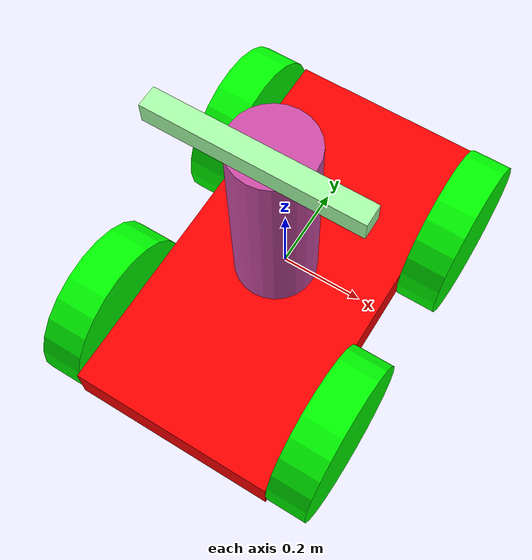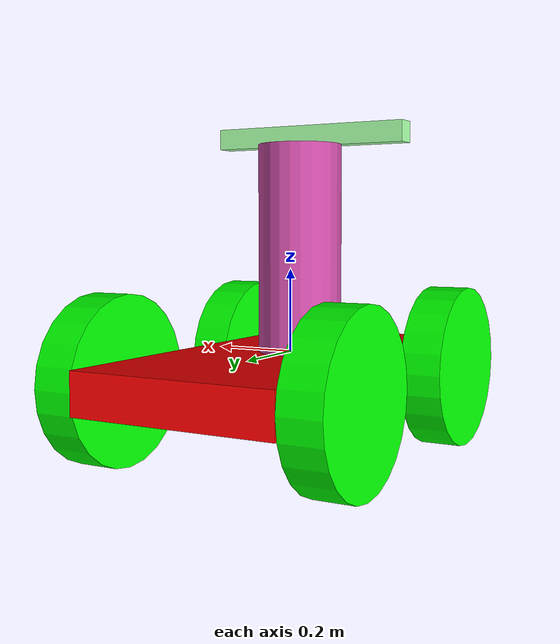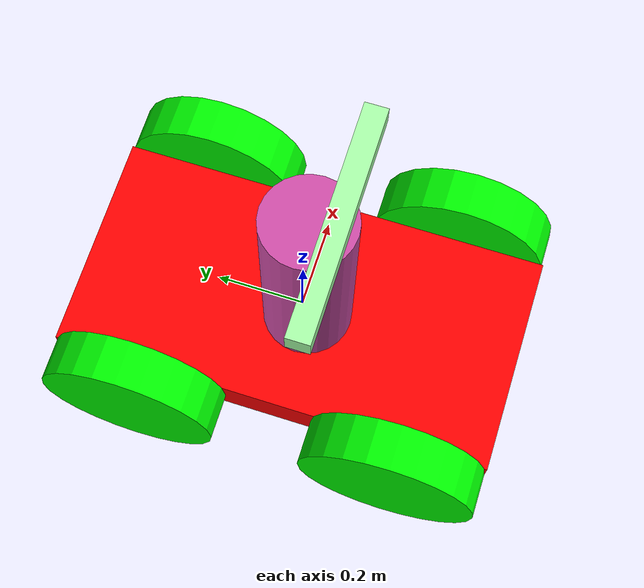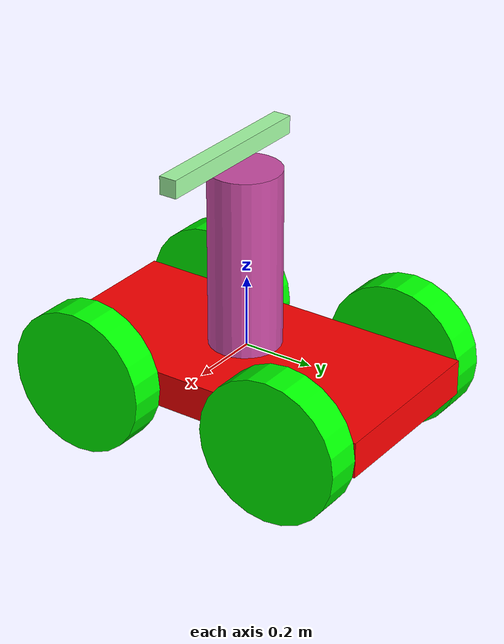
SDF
<?xml version='1.0'?>
<sdf version='1.6'>
  <model name='Robot'>
    <link name='link_0'>
      <pose frame=''>0.003333 0.003332 -0.05 0 -0 0</pose>
      <inertial>
        <mass>1</mass>
        <inertia>
          <ixx>0.166667</ixx>
          <ixy>0</ixy>
          <ixz>0</ixz>
          <iyy>0.166667</iyy>
          <iyz>0</iyz>
          <izz>0.166667</izz>
        </inertia>
        <pose frame=''>0 0 0 0 -0 0</pose>
      </inertial>
      <self_collide>0</self_collide>
      <kinematic>0</kinematic>
      <visual name='visual'>
        <pose frame=''>0 0 0 0 -0 0</pose>
        <geometry>
          <box>
            <size>0.5 1 0.1</size>
          </box>
        </geometry>
        <material>
          <lighting>1</lighting>
          <script>
            <uri>file://media/materials/scripts/gazebo.material</uri>
            <name>Gazebo/Grey</name>
          </script>
          <ambient>1 0 0 1</ambient>
          <diffuse>0.7 0.7 0.7 1</diffuse>
          <specular>0.01 0.01 0.01 1</specular>
          <emissive>0 0 0 1</emissive>
          <shader type='vertex'>
            <normal_map>__default__</normal_map>
          </shader>
        </material>
        <transparency>0</transparency>
        <cast_shadows>1</cast_shadows>
      </visual>
      <collision name='collision'>
        <laser_retro>0</laser_retro>
        <max_contacts>10</max_contacts>
        <pose frame=''>0 0 0 0 -0 0</pose>
        <geometry>
          <box>
            <size>0.5 1 0.1</size>
          </box>
        </geometry>
        <surface>
          <friction>
            <ode>
              <mu>1</mu>
              <mu2>1</mu2>
              <fdir1>0 0 0</fdir1>
              <slip1>0</slip1>
              <slip2>0</slip2>
            </ode>
            <torsional>
              <coefficient>1</coefficient>
              <patch_radius>0</patch_radius>
              <surface_radius>0</surface_radius>
              <use_patch_radius>1</use_patch_radius>
              <ode>
                <slip>0</slip>
              </ode>
            </torsional>
          </friction>
          <bounce>
            <restitution_coefficient>0</restitution_coefficient>
            <threshold>1e+06</threshold>
          </bounce>
          <contact>
            <collide_without_contact>0</collide_without_contact>
            <collide_without_contact_bitmask>1</collide_without_contact_bitmask>
            <collide_bitmask>1</collide_bitmask>
            <ode>
              <soft_cfm>0</soft_cfm>
              <soft_erp>0.2</soft_erp>
              <kp>1e+13</kp>
              <kd>1</kd>
              <max_vel>0.01</max_vel>
              <min_depth>0</min_depth>
            </ode>
            <bullet>
              <split_impulse>1</split_impulse>
              <split_impulse_penetration_threshold>-0.01</split_impulse_penetration_threshold>
              <soft_cfm>0</soft_cfm>
              <soft_erp>0.2</soft_erp>
              <kp>1e+13</kp>
              <kd>1</kd>
            </bullet>
          </contact>
        </surface>
      </collision>
    </link>
    <link name='link_0_0'>
      <pose frame=''>-0.016672 -0.074132 0.524995 0 -0 0.000523</pose>
      <inertial>
        <mass>1</mass>
        <inertia>
          <ixx>0.166667</ixx>
          <ixy>0</ixy>
          <ixz>0</ixz>
          <iyy>0.166667</iyy>
          <iyz>0</iyz>
          <izz>0.166667</izz>
        </inertia>
        <pose frame=''>0 0 0 0 -0 0</pose>
      </inertial>
      <gravity>1</gravity>
      <self_collide>0</self_collide>
      <kinematic>0</kinematic>
      <visual name='visual'>
        <pose frame=''>0 0 0 0 -0 0</pose>
        <geometry>
          <box>
            <size>0.5 0.05 0.05</size>
          </box>
        </geometry>
        <material>
          <lighting>1</lighting>
          <script>
            <uri>file://media/materials/scripts/gazebo.material</uri>
            <name>Gazebo/Grey</name>
          </script>
          <ambient>0.65 1 0.65 1</ambient>
          <diffuse>0.7 0.7 0.7 1</diffuse>
          <specular>0.01 0.01 0.01 1</specular>
          <emissive>0 0 0 1</emissive>
          <shader type='vertex'>
            <normal_map>__default__</normal_map>
          </shader>
        </material>
        <transparency>0</transparency>
        <cast_shadows>1</cast_shadows>
      </visual>
      <collision name='collision'>
        <laser_retro>0</laser_retro>
        <max_contacts>10</max_contacts>
        <pose frame=''>0 0 0 0 -0 0</pose>
        <geometry>
          <box>
            <size>0.5 0.05 0.05</size>
          </box>
        </geometry>
        <surface>
          <friction>
            <ode>
              <mu>1</mu>
              <mu2>1</mu2>
              <fdir1>0 0 0</fdir1>
              <slip1>0</slip1>
              <slip2>0</slip2>
            </ode>
            <torsional>
              <coefficient>1</coefficient>
              <patch_radius>0</patch_radius>
              <surface_radius>0</surface_radius>
              <use_patch_radius>1</use_patch_radius>
              <ode>
                <slip>0</slip>
              </ode>
            </torsional>
          </friction>
          <bounce>
            <restitution_coefficient>0</restitution_coefficient>
            <threshold>1e+06</threshold>
          </bounce>
          <contact>
            <collide_without_contact>0</collide_without_contact>
            <collide_without_contact_bitmask>1</collide_without_contact_bitmask>
            <collide_bitmask>1</collide_bitmask>
            <ode>
              <soft_cfm>0</soft_cfm>
              <soft_erp>0.2</soft_erp>
              <kp>1e+13</kp>
              <kd>1</kd>
              <max_vel>0.01</max_vel>
              <min_depth>0</min_depth>
            </ode>
            <bullet>
              <split_impulse>1</split_impulse>
              <split_impulse_penetration_threshold>-0.01</split_impulse_penetration_threshold>
              <soft_cfm>0</soft_cfm>
              <soft_erp>0.2</soft_erp>
              <kp>1e+13</kp>
              <kd>1</kd>
            </bullet>
          </contact>
        </surface>
      </collision>
    </link>
    <link name='link_2'>
      <pose frame=''>0.303373 0.303332 -0.05 1.5707 0 1.5707</pose>
      <inertial>
        <mass>1</mass>
        <inertia>
          <ixx>0.145833</ixx>
          <ixy>0</ixy>
          <ixz>0</ixz>
          <iyy>0.145833</iyy>
          <iyz>0</iyz>
          <izz>0.125</izz>
        </inertia>
        <pose frame=''>0 0 0 0 -0 0</pose>
      </inertial>
      <self_collide>0</self_collide>
      <kinematic>0</kinematic>
      <visual name='visual'>
        <pose frame=''>0 0 0 0 -0 0</pose>
        <geometry>
          <cylinder>
            <radius>0.2</radius>
            <length>0.1</length>
          </cylinder>
        </geometry>
        <material>
          <lighting>1</lighting>
          <script>
            <uri>file://media/materials/scripts/gazebo.material</uri>
            <name>Gazebo/Grey</name>
          </script>
          <ambient>0 1 0 1</ambient>
          <diffuse>0.7 0.7 0.7 1</diffuse>
          <specular>0.01 0.01 0.01 1</specular>
          <emissive>0 0 0 1</emissive>
          <shader type='vertex'>
            <normal_map>__default__</normal_map>
          </shader>
        </material>
        <transparency>0</transparency>
        <cast_shadows>1</cast_shadows>
      </visual>
      <collision name='collision'>
        <laser_retro>0</laser_retro>
        <max_contacts>10</max_contacts>
        <pose frame=''>0 0 0 0 -0 0</pose>
        <geometry>
          <cylinder>
            <radius>0.2</radius>
            <length>0.1</length>
          </cylinder>
        </geometry>
        <surface>
          <friction>
            <ode>
              <mu>1</mu>
              <mu2>1</mu2>
              <fdir1>0 0 0</fdir1>
              <slip1>0</slip1>
              <slip2>0</slip2>
            </ode>
            <torsional>
              <coefficient>1</coefficient>
              <patch_radius>0</patch_radius>
              <surface_radius>0</surface_radius>
              <use_patch_radius>1</use_patch_radius>
              <ode>
                <slip>0</slip>
              </ode>
            </torsional>
          </friction>
          <bounce>
            <restitution_coefficient>0</restitution_coefficient>
            <threshold>1e+06</threshold>
          </bounce>
          <contact>
            <collide_without_contact>0</collide_without_contact>
            <collide_without_contact_bitmask>1</collide_without_contact_bitmask>
            <collide_bitmask>1</collide_bitmask>
            <ode>
              <soft_cfm>0</soft_cfm>
              <soft_erp>0.2</soft_erp>
              <kp>1e+13</kp>
              <kd>1</kd>
              <max_vel>0.01</max_vel>
              <min_depth>0</min_depth>
            </ode>
            <bullet>
              <split_impulse>1</split_impulse>
              <split_impulse_penetration_threshold>-0.01</split_impulse_penetration_threshold>
              <soft_cfm>0</soft_cfm>
              <soft_erp>0.2</soft_erp>
              <kp>1e+13</kp>
              <kd>1</kd>
            </bullet>
          </contact>
        </surface>
      </collision>
    </link>
    <link name='link_2_clone'>
      <pose frame=''>-0.296706 -0.296663 -0.05 1.5707 0 1.5707</pose>
      <inertial>
        <mass>1</mass>
        <inertia>
          <ixx>0.145833</ixx>
          <ixy>0</ixy>
          <ixz>0</ixz>
          <iyy>0.145833</iyy>
          <iyz>0</iyz>
          <izz>0.125</izz>
        </inertia>
        <pose frame=''>0 0 0 0 -0 0</pose>
      </inertial>
      <self_collide>0</self_collide>
      <kinematic>0</kinematic>
      <visual name='visual'>
        <pose frame=''>0 0 0 0 -0 0</pose>
        <geometry>
          <cylinder>
            <radius>0.2</radius>
            <length>0.1</length>
          </cylinder>
        </geometry>
        <material>
          <lighting>1</lighting>
          <script>
            <uri>file://media/materials/scripts/gazebo.material</uri>
            <name>Gazebo/Grey</name>
          </script>
          <ambient>0 1 0 1</ambient>
          <diffuse>0.7 0.7 0.7 1</diffuse>
          <specular>0.01 0.01 0.01 1</specular>
          <emissive>0 0 0 1</emissive>
          <shader type='vertex'>
            <normal_map>__default__</normal_map>
          </shader>
        </material>
        <transparency>0</transparency>
        <cast_shadows>1</cast_shadows>
      </visual>
      <collision name='collision'>
        <laser_retro>0</laser_retro>
        <max_contacts>10</max_contacts>
        <pose frame=''>0 0 0 0 -0 0</pose>
        <geometry>
          <cylinder>
            <radius>0.2</radius>
            <length>0.1</length>
          </cylinder>
        </geometry>
        <surface>
          <friction>
            <ode>
              <mu>1</mu>
              <mu2>1</mu2>
              <fdir1>0 0 0</fdir1>
              <slip1>0</slip1>
              <slip2>0</slip2>
            </ode>
            <torsional>
              <coefficient>1</coefficient>
              <patch_radius>0</patch_radius>
              <surface_radius>0</surface_radius>
              <use_patch_radius>1</use_patch_radius>
              <ode>
                <slip>0</slip>
              </ode>
            </torsional>
          </friction>
          <bounce>
            <restitution_coefficient>0</restitution_coefficient>
            <threshold>1e+06</threshold>
          </bounce>
          <contact>
            <collide_without_contact>0</collide_without_contact>
            <collide_without_contact_bitmask>1</collide_without_contact_bitmask>
            <collide_bitmask>1</collide_bitmask>
            <ode>
              <soft_cfm>0</soft_cfm>
              <soft_erp>0.2</soft_erp>
              <kp>1e+13</kp>
              <kd>1</kd>
              <max_vel>0.01</max_vel>
              <min_depth>0</min_depth>
            </ode>
            <bullet>
              <split_impulse>1</split_impulse>
              <split_impulse_penetration_threshold>-0.01</split_impulse_penetration_threshold>
              <soft_cfm>0</soft_cfm>
              <soft_erp>0.2</soft_erp>
              <kp>1e+13</kp>
              <kd>1</kd>
            </bullet>
          </contact>
        </surface>
      </collision>
    </link>
    <link name='link_2_clone_0'>
      <pose frame=''>-0.296706 0.303332 -0.05 1.5707 0 1.5707</pose>
      <inertial>
        <mass>1</mass>
        <inertia>
          <ixx>0.145833</ixx>
          <ixy>0</ixy>
          <ixz>0</ixz>
          <iyy>0.145833</iyy>
          <iyz>0</iyz>
          <izz>0.125</izz>
        </inertia>
        <pose frame=''>0 0 0 0 -0 0</pose>
      </inertial>
      <self_collide>0</self_collide>
      <kinematic>0</kinematic>
      <visual name='visual'>
        <pose frame=''>0 0 0 0 -0 0</pose>
        <geometry>
          <cylinder>
            <radius>0.2</radius>
            <length>0.1</length>
          </cylinder>
        </geometry>
        <material>
          <lighting>1</lighting>
          <script>
            <uri>file://media/materials/scripts/gazebo.material</uri>
            <name>Gazebo/Grey</name>
          </script>
          <ambient>0 1 0 1</ambient>
          <diffuse>0.7 0.7 0.7 1</diffuse>
          <specular>0.01 0.01 0.01 1</specular>
          <emissive>0 0 0 1</emissive>
          <shader type='vertex'>
            <normal_map>__default__</normal_map>
          </shader>
        </material>
        <transparency>0</transparency>
        <cast_shadows>1</cast_shadows>
      </visual>
      <collision name='collision'>
        <laser_retro>0</laser_retro>
        <max_contacts>10</max_contacts>
        <pose frame=''>0 0 0 0 -0 0</pose>
        <geometry>
          <cylinder>
            <radius>0.2</radius>
            <length>0.1</length>
          </cylinder>
        </geometry>
        <surface>
          <friction>
            <ode>
              <mu>1</mu>
              <mu2>1</mu2>
              <fdir1>0 0 0</fdir1>
              <slip1>0</slip1>
              <slip2>0</slip2>
            </ode>
            <torsional>
              <coefficient>1</coefficient>
              <patch_radius>0</patch_radius>
              <surface_radius>0</surface_radius>
              <use_patch_radius>1</use_patch_radius>
              <ode>
                <slip>0</slip>
              </ode>
            </torsional>
          </friction>
          <bounce>
            <restitution_coefficient>0</restitution_coefficient>
            <threshold>1e+06</threshold>
          </bounce>
          <contact>
            <collide_without_contact>0</collide_without_contact>
            <collide_without_contact_bitmask>1</collide_without_contact_bitmask>
            <collide_bitmask>1</collide_bitmask>
            <ode>
              <soft_cfm>0</soft_cfm>
              <soft_erp>0.2</soft_erp>
              <kp>1e+13</kp>
              <kd>1</kd>
              <max_vel>0.01</max_vel>
              <min_depth>0</min_depth>
            </ode>
            <bullet>
              <split_impulse>1</split_impulse>
              <split_impulse_penetration_threshold>-0.01</split_impulse_penetration_threshold>
              <soft_cfm>0</soft_cfm>
              <soft_erp>0.2</soft_erp>
              <kp>1e+13</kp>
              <kd>1</kd>
            </bullet>
          </contact>
        </surface>
      </collision>
    </link>
    <link name='link_2_clone_1'>
      <pose frame=''>0.303373 -0.296663 -0.05 1.5707 0 1.5707</pose>
      <inertial>
        <mass>1</mass>
        <inertia>
          <ixx>0.145833</ixx>
          <ixy>0</ixy>
          <ixz>0</ixz>
          <iyy>0.145833</iyy>
          <iyz>0</iyz>
          <izz>0.125</izz>
        </inertia>
        <pose frame=''>0 0 0 0 -0 0</pose>
      </inertial>
      <self_collide>0</self_collide>
      <kinematic>0</kinematic>
      <visual name='visual'>
        <pose frame=''>0 0 0 0 -0 0</pose>
        <geometry>
          <cylinder>
            <radius>0.2</radius>
            <length>0.1</length>
          </cylinder>
        </geometry>
        <material>
          <lighting>1</lighting>
          <script>
            <uri>file://media/materials/scripts/gazebo.material</uri>
            <name>Gazebo/Grey</name>
          </script>
          <ambient>0 1 0 1</ambient>
          <diffuse>0.7 0.7 0.7 1</diffuse>
          <specular>0.01 0.01 0.01 1</specular>
          <emissive>0 0 0 1</emissive>
          <shader type='vertex'>
            <normal_map>__default__</normal_map>
          </shader>
        </material>
        <transparency>0</transparency>
        <cast_shadows>1</cast_shadows>
      </visual>
      <collision name='collision'>
        <laser_retro>0</laser_retro>
        <max_contacts>10</max_contacts>
        <pose frame=''>0 0 0 0 -0 0</pose>
        <geometry>
          <cylinder>
            <radius>0.2</radius>
            <length>0.1</length>
          </cylinder>
        </geometry>
        <surface>
          <friction>
            <ode>
              <mu>1</mu>
              <mu2>1</mu2>
              <fdir1>0 0 0</fdir1>
              <slip1>0</slip1>
              <slip2>0</slip2>
            </ode>
            <torsional>
              <coefficient>1</coefficient>
              <patch_radius>0</patch_radius>
              <surface_radius>0</surface_radius>
              <use_patch_radius>1</use_patch_radius>
              <ode>
                <slip>0</slip>
              </ode>
            </torsional>
          </friction>
          <bounce>
            <restitution_coefficient>0</restitution_coefficient>
            <threshold>1e+06</threshold>
          </bounce>
          <contact>
            <collide_without_contact>0</collide_without_contact>
            <collide_without_contact_bitmask>1</collide_without_contact_bitmask>
            <collide_bitmask>1</collide_bitmask>
            <ode>
              <soft_cfm>0</soft_cfm>
              <soft_erp>0.2</soft_erp>
              <kp>1e+13</kp>
              <kd>1</kd>
              <max_vel>0.01</max_vel>
              <min_depth>0</min_depth>
            </ode>
            <bullet>
              <split_impulse>1</split_impulse>
              <split_impulse_penetration_threshold>-0.01</split_impulse_penetration_threshold>
              <soft_cfm>0</soft_cfm>
              <soft_erp>0.2</soft_erp>
              <kp>1e+13</kp>
              <kd>1</kd>
            </bullet>
          </contact>
        </surface>
      </collision>
    </link>
    <link name='link_7'>
      <pose frame=''>-0.016703 -0.016632 0.249995 -0 -0 -0.001783</pose>
      <inertial>
        <mass>1</mass>
        <inertia>
          <ixx>0.145833</ixx>
          <ixy>0</ixy>
          <ixz>0</ixz>
          <iyy>0.145833</iyy>
          <iyz>0</iyz>
          <izz>0.125</izz>
        </inertia>
        <pose frame=''>0 0 0 0 -0 0</pose>
      </inertial>
      <self_collide>0</self_collide>
      <kinematic>0</kinematic>
      <visual name='visual'>
        <pose frame=''>0 0 0 0 -0 0</pose>
        <geometry>
          <cylinder>
            <radius>0.1</radius>
            <length>0.5</length>
          </cylinder>
        </geometry>
        <material>
          <lighting>1</lighting>
          <script>
            <uri>file://media/materials/scripts/gazebo.material</uri>
            <name>Gazebo/Grey</name>
          </script>
          <ambient>0.8 0.3 0.65 1</ambient>
          <diffuse>0.7 0.7 0.7 1</diffuse>
          <specular>0.01 0.01 0.01 1</specular>
          <emissive>0 0 0 1</emissive>
          <shader type='vertex'>
            <normal_map>__default__</normal_map>
          </shader>
        </material>
        <transparency>0</transparency>
        <cast_shadows>1</cast_shadows>
      </visual>
      <collision name='collision'>
        <laser_retro>0</laser_retro>
        <max_contacts>10</max_contacts>
        <pose frame=''>0 0 0 0 -0 0</pose>
        <geometry>
          <cylinder>
            <radius>0.1</radius>
            <length>0.5</length>
          </cylinder>
        </geometry>
        <surface>
          <friction>
            <ode>
              <mu>1</mu>
              <mu2>1</mu2>
              <fdir1>0 0 0</fdir1>
              <slip1>0</slip1>
              <slip2>0</slip2>
            </ode>
            <torsional>
              <coefficient>1</coefficient>
              <patch_radius>0</patch_radius>
              <surface_radius>0</surface_radius>
              <use_patch_radius>1</use_patch_radius>
              <ode>
                <slip>0</slip>
              </ode>
            </torsional>
          </friction>
          <bounce>
            <restitution_coefficient>0</restitution_coefficient>
            <threshold>1e+06</threshold>
          </bounce>
          <contact>
            <collide_without_contact>0</collide_without_contact>
            <collide_without_contact_bitmask>1</collide_without_contact_bitmask>
            <collide_bitmask>1</collide_bitmask>
            <ode>
              <soft_cfm>0</soft_cfm>
              <soft_erp>0.2</soft_erp>
              <kp>1e+13</kp>
              <kd>1</kd>
              <max_vel>0.01</max_vel>
              <min_depth>0</min_depth>
            </ode>
            <bullet>
              <split_impulse>1</split_impulse>
              <split_impulse_penetration_threshold>-0.01</split_impulse_penetration_threshold>
              <soft_cfm>0</soft_cfm>
              <soft_erp>0.2</soft_erp>
              <kp>1e+13</kp>
              <kd>1</kd>
            </bullet>
          </contact>
        </surface>
      </collision>
    </link>
    <joint name='WL1' type='revolute'>
      <parent>link_0</parent>
      <child>link_2</child>
      <pose frame=''>0 0 0 0 -0 0</pose>
      <axis>
        <xyz>0 0 1</xyz>
        <use_parent_model_frame>0</use_parent_model_frame>
        <limit>
          <lower>-1.79769e+308</lower>
          <upper>1.79769e+308</upper>
          <effort>-1</effort>
          <velocity>-1</velocity>
        </limit>
        <dynamics>
          <spring_reference>0</spring_reference>
          <spring_stiffness>0</spring_stiffness>
          <damping>0</damping>
          <friction>0</friction>
        </dynamics>
      </axis>
      <physics>
        <ode>
          <limit>
            <cfm>0</cfm>
            <erp>0.2</erp>
          </limit>
          <suspension>
            <cfm>0</cfm>
            <erp>0.2</erp>
          </suspension>
        </ode>
      </physics>
    </joint>
    <joint name='WL2' type='revolute'>
      <parent>link_0</parent>
      <child>link_2_clone_0</child>
      <pose frame=''>0 0 0 0 -0 0</pose>
      <axis>
        <xyz>0 0 1</xyz>
        <use_parent_model_frame>0</use_parent_model_frame>
        <limit>
          <lower>-1.79769e+308</lower>
          <upper>1.79769e+308</upper>
          <effort>-1</effort>
          <velocity>-1</velocity>
        </limit>
        <dynamics>
          <spring_reference>0</spring_reference>
          <spring_stiffness>0</spring_stiffness>
          <damping>0</damping>
          <friction>0</friction>
        </dynamics>
      </axis>
      <physics>
        <ode>
          <limit>
            <cfm>0</cfm>
            <erp>0.2</erp>
          </limit>
          <suspension>
            <cfm>0</cfm>
            <erp>0.2</erp>
          </suspension>
        </ode>
      </physics>
    </joint>
    <joint name='WL3' type='revolute'>
      <parent>link_0</parent>
      <child>link_2_clone_1</child>
      <pose frame=''>0 0 0 0 -0 0</pose>
      <axis>
        <xyz>0 0 1</xyz>
        <use_parent_model_frame>0</use_parent_model_frame>
        <limit>
          <lower>-1.79769e+308</lower>
          <upper>1.79769e+308</upper>
          <effort>-1</effort>
          <velocity>-1</velocity>
        </limit>
        <dynamics>
          <spring_reference>0</spring_reference>
          <spring_stiffness>0</spring_stiffness>
          <damping>0</damping>
          <friction>0</friction>
        </dynamics>
      </axis>
      <physics>
        <ode>
          <limit>
            <cfm>0</cfm>
            <erp>0.2</erp>
          </limit>
          <suspension>
            <cfm>0</cfm>
            <erp>0.2</erp>
          </suspension>
        </ode>
      </physics>
    </joint>
    <joint name='WL4' type='revolute'>
      <parent>link_0</parent>
      <child>link_2_clone</child>
      <pose frame=''>0 0 0 0 -0 0</pose>
      <axis>
        <xyz>0 0 1</xyz>
        <use_parent_model_frame>0</use_parent_model_frame>
        <limit>
          <lower>-1.79769e+308</lower>
          <upper>1.79769e+308</upper>
          <effort>-1</effort>
          <velocity>-1</velocity>
        </limit>
        <dynamics>
          <spring_reference>0</spring_reference>
          <spring_stiffness>0</spring_stiffness>
          <damping>0</damping>
          <friction>0</friction>
        </dynamics>
      </axis>
      <physics>
        <ode>
          <limit>
            <cfm>0</cfm>
            <erp>0.2</erp>
          </limit>
          <suspension>
            <cfm>0</cfm>
            <erp>0.2</erp>
          </suspension>
        </ode>
      </physics>
    </joint>
    <joint name='link_0_JOINT_7' type='revolute'>
      <parent>link_0</parent>
      <child>link_7</child>
      <pose frame=''>0 0 0 0 -0 0</pose>
      <axis>
        <xyz>0 0 1</xyz>
        <use_parent_model_frame>0</use_parent_model_frame>
        <limit>
          <lower>-1.79769e+308</lower>
          <upper>1.79769e+308</upper>
          <effort>-1</effort>
          <velocity>-1</velocity>
        </limit>
        <dynamics>
          <spring_reference>0</spring_reference>
          <spring_stiffness>0</spring_stiffness>
          <damping>0</damping>
          <friction>0</friction>
        </dynamics>
      </axis>
      <physics>
        <ode>
          <limit>
            <cfm>0</cfm>
            <erp>0.2</erp>
          </limit>
          <suspension>
            <cfm>0</cfm>
            <erp>0.2</erp>
          </suspension>
        </ode>
      </physics>
    </joint>
    <joint name='link_7_JOINT_0' type='fixed'>
      <parent>link_7</parent>
      <child>link_0_0</child>
      <pose frame=''>0 0 0 0 -0 0</pose>
      <physics>
        <ode>
          <limit>
            <cfm>0</cfm>
            <erp>0.2</erp>
          </limit>
          <suspension>
            <cfm>0</cfm>
            <erp>0.2</erp>
          </suspension>
        </ode>
      </physics>
    </joint>
    <static>0</static>
    <allow_auto_disable>1</allow_auto_disable>
  </model>
</sdf>
